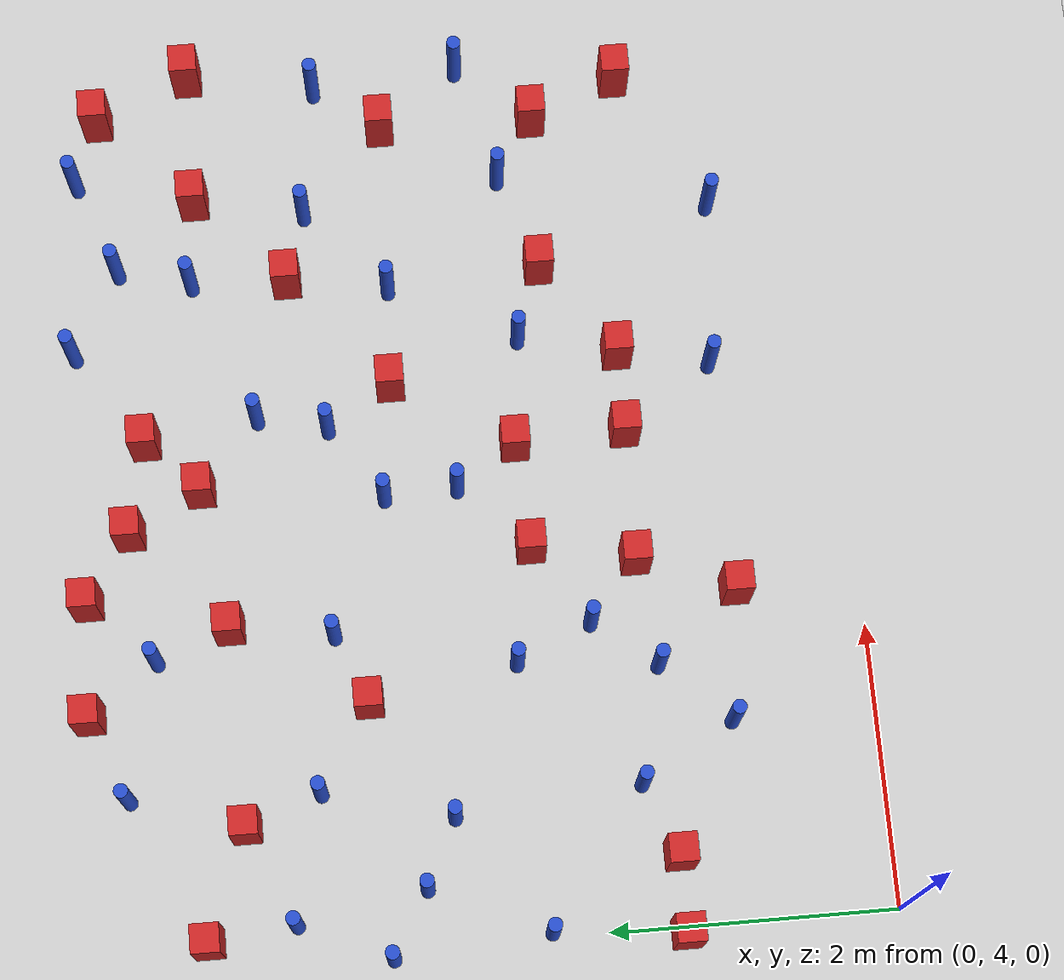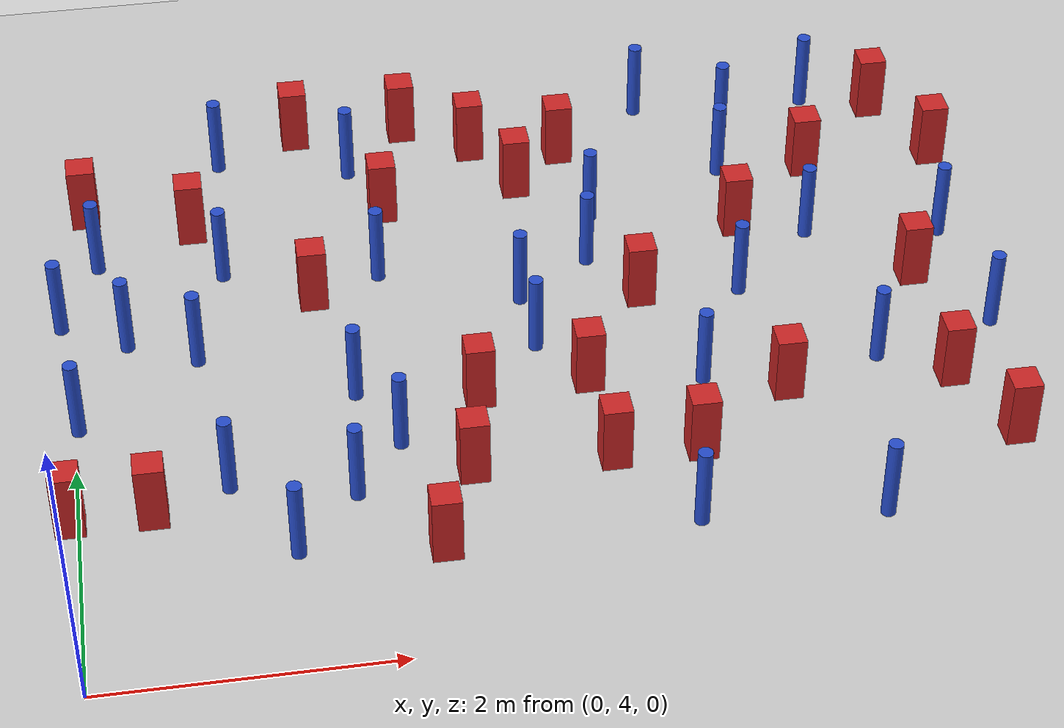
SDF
<sdf version="1.6">
 <world name="default">
  <model name="ground_plane">
   <static>1</static>
   <link name="link">
    <collision name="collision">
     <geometry><plane><normal>0 0 1</normal><size>100 100</size></plane></geometry>
     <surface><friction><ode><mu>100</mu><mu2>50</mu2></ode></friction></surface>
    </collision>
    <visual name="visual">
     <cast_shadows>0</cast_shadows>
     <geometry><plane><normal>0 0 1</normal><size>100 100</size></plane></geometry>
     <material>
      <ambient>1.0 1.0 1.0 1.0</ambient>
      <diffuse>0.8 0.8 0.8 1.0</diffuse>
      <specular>0.01 0.01 0.01 1.000000</specular>
     </material>
    </visual>
   </link>
  </model>
  <model name="pole_obstacle2">
   <static>true</static>
   <pose>3.82269848342 8.17413001489 7.38925637345e-09 -8.47170692793e-08 1.24976764408e-08 -1.74513093041e-07</pose>
   <link name="link">
    <pose>0 0 0.3 0 -0 0</pose>
    <inertial>
     <mass>1</mass>
     <inertia><ixx>0.145833</ixx><ixy>0</ixy><ixz>0</ixz><iyy>0.145833</iyy><iyz>0</iyz><izz>0.125</izz></inertia>
    </inertial>
    <collision name="collision">
     <geometry><cylinder><radius>0.05</radius><length>.6</length></cylinder></geometry>
    </collision>
    <visual name="visual">
     <geometry><cylinder><radius>0.05</radius><length>.6</length></cylinder></geometry>
     <material>
      <script><name>Gazebo/Blue</name><uri>file://media/materials/scripts/gazebo.material</uri></script>
     </material>
    </visual>
   </link>
  </model>
  <model name="square_post_obstacle5">
   <static>true</static>
   <pose>2.31487394498 8.45547136916 1.91545236811e-07 -7.35059704564e-06 1.12565212e-07 2.39332434364e-05</pose>
   <link name="link">
    <pose>0 0 0.25 0 -0 0</pose>
    <inertial>
     <mass>100</mass>
     <inertia>
      <ixx>0.166667</ixx>
      <ixy>0</ixy>
      <ixz>0</ixz>
      <iyy>0.166667</iyy>
      <iyz>0</iyz>
      <izz>0.166667</izz>
     </inertia>
    </inertial>
    <collision name="collision"><geometry><box><size>.2 .2 .5</size></box></geometry></collision>
    <visual name="visual">
     <geometry><box><size>.2 .2 .5</size></box></geometry>
     <material>
      <script><name>Gazebo/Red</name><uri>file://media/materials/scripts/gazebo.material</uri></script>
     </material>
    </visual>
   </link>
  </model>
  <model name="pole_obstacle4">
   <static>true</static>
   <pose>1.90457020753 6.46916176601 7.38925637345e-09 -8.47170692799e-08 1.24976765033e-08 -1.74513093018e-07</pose>
   <link name="link">
    <pose>0 0 0.3 0 -0 0</pose>
    <inertial>
     <mass>1</mass>
     <inertia><ixx>0.145833</ixx><ixy>0</ixy><ixz>0</ixz><iyy>0.145833</iyy><iyz>0</iyz><izz>0.125</izz></inertia>
    </inertial>
    <collision name="collision">
     <geometry><cylinder><radius>0.05</radius><length>.6</length></cylinder></geometry>
    </collision>
    <visual name="visual">
     <geometry><cylinder><radius>0.05</radius><length>.6</length></cylinder></geometry>
     <material>
      <script><name>Gazebo/Blue</name><uri>file://media/materials/scripts/gazebo.material</uri></script>
     </material>
    </visual>
   </link>
  </model>
  <model name="square_post_obstacle24">
   <static>true</static>
   <pose>0.484739802041 5.47457284809 1.91545236811e-07 -7.35059704564e-06 1.12565212e-07 2.39332434364e-05</pose>
   <link name="link">
    <pose>0 0 0.25 0 -0 0</pose>
    <inertial>
     <mass>100</mass>
     <inertia>
      <ixx>0.166667</ixx>
      <ixy>0</ixy>
      <ixz>0</ixz>
      <iyy>0.166667</iyy>
      <iyz>0</iyz>
      <izz>0.166667</izz>
     </inertia>
    </inertial>
    <collision name="collision"><geometry><box><size>.2 .2 .5</size></box></geometry></collision>
    <visual name="visual">
     <geometry><box><size>.2 .2 .5</size></box></geometry>
     <material>
      <script><name>Gazebo/Red</name><uri>file://media/materials/scripts/gazebo.material</uri></script>
     </material>
    </visual>
   </link>
  </model>
  <model name="pole_obstacle18">
   <static>true</static>
   <pose>2.20001541936 7.72817106618 7.38925637345e-09 -8.47170692798e-08 1.24976765033e-08 -1.74513093019e-07</pose>
   <link name="link">
    <pose>0 0 0.3 0 -0 0</pose>
    <inertial>
     <mass>1</mass>
     <inertia><ixx>0.145833</ixx><ixy>0</ixy><ixz>0</ixz><iyy>0.145833</iyy><iyz>0</iyz><izz>0.125</izz></inertia>
    </inertial>
    <collision name="collision">
     <geometry><cylinder><radius>0.05</radius><length>.6</length></cylinder></geometry>
    </collision>
    <visual name="visual">
     <geometry><cylinder><radius>0.05</radius><length>.6</length></cylinder></geometry>
     <material>
      <script><name>Gazebo/Blue</name><uri>file://media/materials/scripts/gazebo.material</uri></script>
     </material>
    </visual>
   </link>
  </model>
  <model name="pole_obstacle23">
   <static>true</static>
   <pose>3.17089003585 7.30738525614 7.38925637345e-09 -8.47170692798e-08 1.24976765033e-08 -1.74513093019e-07</pose>
   <link name="link">
    <pose>0 0 0.3 0 -0 0</pose>
    <inertial>
     <mass>1</mass>
     <inertia><ixx>0.145833</ixx><ixy>0</ixy><ixz>0</ixz><iyy>0.145833</iyy><iyz>0</iyz><izz>0.125</izz></inertia>
    </inertial>
    <collision name="collision">
     <geometry><cylinder><radius>0.05</radius><length>.6</length></cylinder></geometry>
    </collision>
    <visual name="visual">
     <geometry><cylinder><radius>0.05</radius><length>.6</length></cylinder></geometry>
     <material>
      <script><name>Gazebo/Blue</name><uri>file://media/materials/scripts/gazebo.material</uri></script>
     </material>
    </visual>
   </link>
  </model>
  <model name="pole_obstacle27">
   <static>true</static>
   <pose>5.71115070866 9.38778204367 7.38925637345e-09 -8.471706928e-08 1.24976765081e-08 -1.74513093015e-07</pose>
   <link name="link">
    <pose>0 0 0.3 0 -0 0</pose>
    <inertial>
     <mass>1</mass>
     <inertia><ixx>0.145833</ixx><ixy>0</ixy><ixz>0</ixz><iyy>0.145833</iyy><iyz>0</iyz><izz>0.125</izz></inertia>
    </inertial>
    <collision name="collision">
     <geometry><cylinder><radius>0.05</radius><length>.6</length></cylinder></geometry>
    </collision>
    <visual name="visual">
     <geometry><cylinder><radius>0.05</radius><length>.6</length></cylinder></geometry>
     <material>
      <script><name>Gazebo/Blue</name><uri>file://media/materials/scripts/gazebo.material</uri></script>
     </material>
    </visual>
   </link>
  </model>
  <model name="square_post_obstacle32">
   <static>true</static>
   <pose>6.2467090291 5.3941952917 1.91545236811e-07 -7.35059704564e-06 1.12565212e-07 2.39332434364e-05</pose>
   <link name="link">
    <pose>0 0 0.25 0 -0 0</pose>
    <inertial>
     <mass>100</mass>
     <inertia>
      <ixx>0.166667</ixx>
      <ixy>0</ixy>
      <ixz>0</ixz>
      <iyy>0.166667</iyy>
      <iyz>0</iyz>
      <izz>0.166667</izz>
     </inertia>
    </inertial>
    <collision name="collision"><geometry><box><size>.2 .2 .5</size></box></geometry></collision>
    <visual name="visual">
     <geometry><box><size>.2 .2 .5</size></box></geometry>
     <material>
      <script><name>Gazebo/Red</name><uri>file://media/materials/scripts/gazebo.material</uri></script>
     </material>
    </visual>
   </link>
  </model>
  <model name="pole_obstacle30">
   <static>true</static>
   <pose>1.81392781154 5.48696834419 7.38925637345e-09 -8.47170692799e-08 1.24976765033e-08 -1.74513093018e-07</pose>
   <link name="link">
    <pose>0 0 0.3 0 -0 0</pose>
    <inertial>
     <mass>1</mass>
     <inertia><ixx>0.145833</ixx><ixy>0</ixy><ixz>0</ixz><iyy>0.145833</iyy><iyz>0</iyz><izz>0.125</izz></inertia>
    </inertial>
    <collision name="collision">
     <geometry><cylinder><radius>0.05</radius><length>.6</length></cylinder></geometry>
    </collision>
    <visual name="visual">
     <geometry><cylinder><radius>0.05</radius><length>.6</length></cylinder></geometry>
     <material>
      <script><name>Gazebo/Blue</name><uri>file://media/materials/scripts/gazebo.material</uri></script>
     </material>
    </visual>
   </link>
  </model>
  <model name="pole_obstacle32">
   <static>true</static>
   <pose>2.11089054169 8.97932788935 7.38925637345e-09 -8.47170692793e-08 1.24976764408e-08 -1.74513093041e-07</pose>
   <link name="link">
    <pose>0 0 0.3 0 -0 0</pose>
    <inertial>
     <mass>1</mass>
     <inertia><ixx>0.145833</ixx><ixy>0</ixy><ixz>0</ixz><iyy>0.145833</iyy><iyz>0</iyz><izz>0.125</izz></inertia>
    </inertial>
    <collision name="collision">
     <geometry><cylinder><radius>0.05</radius><length>.6</length></cylinder></geometry>
    </collision>
    <visual name="visual">
     <geometry><cylinder><radius>0.05</radius><length>.6</length></cylinder></geometry>
     <material>
      <script><name>Gazebo/Blue</name><uri>file://media/materials/scripts/gazebo.material</uri></script>
     </material>
    </visual>
   </link>
  </model>
  <model name="square_post_obstacle44">
   <static>true</static>
   <pose>5.51763300118 8.53637945711 1.91545236811e-07 -7.35059704564e-06 1.12565212e-07 2.39332434364e-05</pose>
   <link name="link">
    <pose>0 0 0.25 0 -0 0</pose>
    <inertial>
     <mass>100</mass>
     <inertia>
      <ixx>0.166667</ixx>
      <ixy>0</ixy>
      <ixz>0</ixz>
      <iyy>0.166667</iyy>
      <iyz>0</iyz>
      <izz>0.166667</izz>
     </inertia>
    </inertial>
    <collision name="collision"><geometry><box><size>.2 .2 .5</size></box></geometry></collision>
    <visual name="visual">
     <geometry><box><size>.2 .2 .5</size></box></geometry>
     <material>
      <script><name>Gazebo/Red</name><uri>file://media/materials/scripts/gazebo.material</uri></script>
     </material>
    </visual>
   </link>
  </model>
  <model name="pole_obstacle48">
   <static>true</static>
   <pose>0.211260788063 8.11723317209 7.38925637345e-09 -8.47170692797e-08 1.24976764785e-08 -1.74513093032e-07</pose>
   <link name="link">
    <pose>0 0 0.3 0 -0 0</pose>
    <inertial>
     <mass>1</mass>
     <inertia><ixx>0.145833</ixx><ixy>0</ixy><ixz>0</ixz><iyy>0.145833</iyy><iyz>0</iyz><izz>0.125</izz></inertia>
    </inertial>
    <collision name="collision">
     <geometry><cylinder><radius>0.05</radius><length>.6</length></cylinder></geometry>
    </collision>
    <visual name="visual">
     <geometry><cylinder><radius>0.05</radius><length>.6</length></cylinder></geometry>
     <material>
      <script><name>Gazebo/Blue</name><uri>file://media/materials/scripts/gazebo.material</uri></script>
     </material>
    </visual>
   </link>
  </model>
  <model name="pole_obstacle50">
   <static>true</static>
   <pose>5.52344491072 6.31080906475 7.38925637345e-09 -8.47170692796e-08 1.24976764786e-08 -1.74513093032e-07</pose>
   <link name="link">
    <pose>0 0 0.3 0 -0 0</pose>
    <inertial>
     <mass>1</mass>
     <inertia><ixx>0.145833</ixx><ixy>0</ixy><ixz>0</ixz><iyy>0.145833</iyy><iyz>0</iyz><izz>0.125</izz></inertia>
    </inertial>
    <collision name="collision">
     <geometry><cylinder><radius>0.05</radius><length>.6</length></cylinder></geometry>
    </collision>
    <visual name="visual">
     <geometry><cylinder><radius>0.05</radius><length>.6</length></cylinder></geometry>
     <material>
      <script><name>Gazebo/Blue</name><uri>file://media/materials/scripts/gazebo.material</uri></script>
     </material>
    </visual>
   </link>
  </model>
  <model name="square_post_obstacle49">
   <static>true</static>
   <pose>4.1233413864 5.56686361475 1.91545236811e-07 -7.35059704564e-06 1.12565212e-07 2.39332434364e-05</pose>
   <link name="link">
    <pose>0 0 0.25 0 -0 0</pose>
    <inertial>
     <mass>100</mass>
     <inertia>
      <ixx>0.166667</ixx>
      <ixy>0</ixy>
      <ixz>0</ixz>
      <iyy>0.166667</iyy>
      <iyz>0</iyz>
      <izz>0.166667</izz>
     </inertia>
    </inertial>
    <collision name="collision"><geometry><box><size>.2 .2 .5</size></box></geometry></collision>
    <visual name="visual">
     <geometry><box><size>.2 .2 .5</size></box></geometry>
     <material>
      <script><name>Gazebo/Red</name><uri>file://media/materials/scripts/gazebo.material</uri></script>
     </material>
    </visual>
   </link>
  </model>
  <model name="square_post_obstacle54">
   <static>true</static>
   <pose>1.75151003404 9.46270792647 1.91545236811e-07 -7.35059704564e-06 1.12565212e-07 2.39332434364e-05</pose>
   <link name="link">
    <pose>0 0 0.25 0 -0 0</pose>
    <inertial>
     <mass>100</mass>
     <inertia>
      <ixx>0.166667</ixx>
      <ixy>0</ixy>
      <ixz>0</ixz>
      <iyy>0.166667</iyy>
      <iyz>0</iyz>
      <izz>0.166667</izz>
     </inertia>
    </inertial>
    <collision name="collision"><geometry><box><size>.2 .2 .5</size></box></geometry></collision>
    <visual name="visual">
     <geometry><box><size>.2 .2 .5</size></box></geometry>
     <material>
      <script><name>Gazebo/Red</name><uri>file://media/materials/scripts/gazebo.material</uri></script>
     </material>
    </visual>
   </link>
  </model>
  <model name="square_post_obstacle56">
   <static>true</static>
   <pose>4.01272765521 7.20560220593 1.91545236811e-07 -7.35059704564e-06 1.12565212e-07 2.39332434364e-05</pose>
   <link name="link">
    <pose>0 0 0.25 0 -0 0</pose>
    <inertial>
     <mass>100</mass>
     <inertia>
      <ixx>0.166667</ixx>
      <ixy>0</ixy>
      <ixz>0</ixz>
      <iyy>0.166667</iyy>
      <iyz>0</iyz>
      <izz>0.166667</izz>
     </inertia>
    </inertial>
    <collision name="collision"><geometry><box><size>.2 .2 .5</size></box></geometry></collision>
    <visual name="visual">
     <geometry><box><size>.2 .2 .5</size></box></geometry>
     <material>
      <script><name>Gazebo/Red</name><uri>file://media/materials/scripts/gazebo.material</uri></script>
     </material>
    </visual>
   </link>
  </model>
  <model name="pole_obstacle56">
   <static>true</static>
   <pose>5.20020420543 4.79944856402 7.38925637345e-09 -8.47170692796e-08 1.24976764786e-08 -1.74513093032e-07</pose>
   <link name="link">
    <pose>0 0 0.3 0 -0 0</pose>
    <inertial>
     <mass>1</mass>
     <inertia><ixx>0.145833</ixx><ixy>0</ixy><ixz>0</ixz><iyy>0.145833</iyy><iyz>0</iyz><izz>0.125</izz></inertia>
    </inertial>
    <collision name="collision">
     <geometry><cylinder><radius>0.05</radius><length>.6</length></cylinder></geometry>
    </collision>
    <visual name="visual">
     <geometry><cylinder><radius>0.05</radius><length>.6</length></cylinder></geometry>
     <material>
      <script><name>Gazebo/Blue</name><uri>file://media/materials/scripts/gazebo.material</uri></script>
     </material>
    </visual>
   </link>
  </model>
  <model name="square_post_obstacle62">
   <static>true</static>
   <pose>3.32889558486 8.60588170303 1.91545236811e-07 -7.35059704564e-06 1.12565212e-07 2.39332434364e-05</pose>
   <link name="link">
    <pose>0 0 0.25 0 -0 0</pose>
    <inertial>
     <mass>100</mass>
     <inertia>
      <ixx>0.166667</ixx>
      <ixy>0</ixy>
      <ixz>0</ixz>
      <iyy>0.166667</iyy>
      <iyz>0</iyz>
      <izz>0.166667</izz>
     </inertia>
    </inertial>
    <collision name="collision"><geometry><box><size>.2 .2 .5</size></box></geometry></collision>
    <visual name="visual">
     <geometry><box><size>.2 .2 .5</size></box></geometry>
     <material>
      <script><name>Gazebo/Red</name><uri>file://media/materials/scripts/gazebo.material</uri></script>
     </material>
    </visual>
   </link>
  </model>
  <model name="pole_obstacle61">
   <static>true</static>
   <pose>0.0271349696667 6.38572568711 7.38925637345e-09 -8.471706928e-08 1.24976765089e-08 -1.74513093016e-07</pose>
   <link name="link">
    <pose>0 0 0.3 0 -0 0</pose>
    <inertial>
     <mass>1</mass>
     <inertia><ixx>0.145833</ixx><ixy>0</ixy><ixz>0</ixz><iyy>0.145833</iyy><iyz>0</iyz><izz>0.125</izz></inertia>
    </inertial>
    <collision name="collision">
     <geometry><cylinder><radius>0.05</radius><length>.6</length></cylinder></geometry>
    </collision>
    <visual name="visual">
     <geometry><cylinder><radius>0.05</radius><length>.6</length></cylinder></geometry>
     <material>
      <script><name>Gazebo/Blue</name><uri>file://media/materials/scripts/gazebo.material</uri></script>
     </material>
    </visual>
   </link>
  </model>
  <model name="pole_obstacle65">
   <static>true</static>
   <pose>4.73125536535 7.17091150199 7.38925637345e-09 -8.47170692796e-08 1.24976764786e-08 -1.74513093032e-07</pose>
   <link name="link">
    <pose>0 0 0.3 0 -0 0</pose>
    <inertial>
     <mass>1</mass>
     <inertia><ixx>0.145833</ixx><ixy>0</ixy><ixz>0</ixz><iyy>0.145833</iyy><iyz>0</iyz><izz>0.125</izz></inertia>
    </inertial>
    <collision name="collision">
     <geometry><cylinder><radius>0.05</radius><length>.6</length></cylinder></geometry>
    </collision>
    <visual name="visual">
     <geometry><cylinder><radius>0.05</radius><length>.6</length></cylinder></geometry>
     <material>
      <script><name>Gazebo/Blue</name><uri>file://media/materials/scripts/gazebo.material</uri></script>
     </material>
    </visual>
   </link>
  </model>
  <model name="pole_obstacle66">
   <static>true</static>
   <pose>1.09813503017 7.89486243727 7.38925637345e-09 -8.47170692799e-08 1.24976765033e-08 -1.74513093018e-07</pose>
   <link name="link">
    <pose>0 0 0.3 0 -0 0</pose>
    <inertial>
     <mass>1</mass>
     <inertia><ixx>0.145833</ixx><ixy>0</ixy><ixz>0</ixz><iyy>0.145833</iyy><iyz>0</iyz><izz>0.125</izz></inertia>
    </inertial>
    <collision name="collision">
     <geometry><cylinder><radius>0.05</radius><length>.6</length></cylinder></geometry>
    </collision>
    <visual name="visual">
     <geometry><cylinder><radius>0.05</radius><length>.6</length></cylinder></geometry>
     <material>
      <script><name>Gazebo/Blue</name><uri>file://media/materials/scripts/gazebo.material</uri></script>
     </material>
    </visual>
   </link>
  </model>
  <model name="square_post_obstacle70">
   <static>true</static>
   <pose>0.139885185108 8.72020235259 1.91545236811e-07 -7.35059704564e-06 1.12565212e-07 2.39332434364e-05</pose>
   <link name="link">
    <pose>0 0 0.25 0 -0 0</pose>
    <inertial>
     <mass>100</mass>
     <inertia>
      <ixx>0.166667</ixx>
      <ixy>0</ixy>
      <ixz>0</ixz>
      <iyy>0.166667</iyy>
      <iyz>0</iyz>
      <izz>0.166667</izz>
     </inertia>
    </inertial>
    <collision name="collision"><geometry><box><size>.2 .2 .5</size></box></geometry></collision>
    <visual name="visual">
     <geometry><box><size>.2 .2 .5</size></box></geometry>
     <material>
      <script><name>Gazebo/Red</name><uri>file://media/materials/scripts/gazebo.material</uri></script>
     </material>
    </visual>
   </link>
  </model>
  <model name="pole_obstacle69">
   <static>true</static>
   <pose>0.386440607014 7.21195615881 7.38925637345e-09 -8.471706928e-08 1.24976765079e-08 -1.74513093015e-07</pose>
   <link name="link">
    <pose>0 0 0.3 0 -0 0</pose>
    <inertial>
     <mass>1</mass>
     <inertia><ixx>0.145833</ixx><ixy>0</ixy><ixz>0</ixz><iyy>0.145833</iyy><iyz>0</iyz><izz>0.125</izz></inertia>
    </inertial>
    <collision name="collision">
     <geometry><cylinder><radius>0.05</radius><length>.6</length></cylinder></geometry>
    </collision>
    <visual name="visual">
     <geometry><cylinder><radius>0.05</radius><length>.6</length></cylinder></geometry>
     <material>
      <script><name>Gazebo/Blue</name><uri>file://media/materials/scripts/gazebo.material</uri></script>
     </material>
    </visual>
   </link>
  </model>
  <model name="pole_obstacle70">
   <static>true</static>
   <pose>0.99131800528 5.67971599183 7.38925637345e-09 -8.471706928e-08 1.24976765144e-08 -1.74513093012e-07</pose>
   <link name="link">
    <pose>0 0 0.3 0 -0 0</pose>
    <inertial>
     <mass>1</mass>
     <inertia><ixx>0.145833</ixx><ixy>0</ixy><ixz>0</ixz><iyy>0.145833</iyy><iyz>0</iyz><izz>0.125</izz></inertia>
    </inertial>
    <collision name="collision">
     <geometry><cylinder><radius>0.05</radius><length>.6</length></cylinder></geometry>
    </collision>
    <visual name="visual">
     <geometry><cylinder><radius>0.05</radius><length>.6</length></cylinder></geometry>
     <material>
      <script><name>Gazebo/Blue</name><uri>file://media/materials/scripts/gazebo.material</uri></script>
     </material>
    </visual>
   </link>
  </model>
  <model name="pole_obstacle71">
   <static>true</static>
   <pose>3.19909006052 6.78698996671 7.38925637345e-09 -8.47170692798e-08 1.24976765033e-08 -1.74513093019e-07</pose>
   <link name="link">
    <pose>0 0 0.3 0 -0 0</pose>
    <inertial>
     <mass>1</mass>
     <inertia><ixx>0.145833</ixx><ixy>0</ixy><ixz>0</ixz><iyy>0.145833</iyy><iyz>0</iyz><izz>0.125</izz></inertia>
    </inertial>
    <collision name="collision">
     <geometry><cylinder><radius>0.05</radius><length>.6</length></cylinder></geometry>
    </collision>
    <visual name="visual">
     <geometry><cylinder><radius>0.05</radius><length>.6</length></cylinder></geometry>
     <material>
      <script><name>Gazebo/Blue</name><uri>file://media/materials/scripts/gazebo.material</uri></script>
     </material>
    </visual>
   </link>
  </model>
  <model name="pole_obstacle85">
   <static>true</static>
   <pose>5.0114968984 9.11667754702 7.38925637345e-09 -8.471706928e-08 1.24976765081e-08 -1.74513093015e-07</pose>
   <link name="link">
    <pose>0 0 0.3 0 -0 0</pose>
    <inertial>
     <mass>1</mass>
     <inertia><ixx>0.145833</ixx><ixy>0</ixy><ixz>0</ixz><iyy>0.145833</iyy><iyz>0</iyz><izz>0.125</izz></inertia>
    </inertial>
    <collision name="collision">
     <geometry><cylinder><radius>0.05</radius><length>.6</length></cylinder></geometry>
    </collision>
    <visual name="visual">
     <geometry><cylinder><radius>0.05</radius><length>.6</length></cylinder></geometry>
     <material>
      <script><name>Gazebo/Blue</name><uri>file://media/materials/scripts/gazebo.material</uri></script>
     </material>
    </visual>
   </link>
  </model>
  <model name="pole_obstacle106">
   <static>true</static>
   <pose>5.35539246516 7.74326511599 7.38925637345e-09 -8.47170692796e-08 1.24976764786e-08 -1.74513093032e-07</pose>
   <link name="link">
    <pose>0 0 0.3 0 -0 0</pose>
    <inertial>
     <mass>1</mass>
     <inertia><ixx>0.145833</ixx><ixy>0</ixy><ixz>0</ixz><iyy>0.145833</iyy><iyz>0</iyz><izz>0.125</izz></inertia>
    </inertial>
    <collision name="collision">
     <geometry><cylinder><radius>0.05</radius><length>.6</length></cylinder></geometry>
    </collision>
    <visual name="visual">
     <geometry><cylinder><radius>0.05</radius><length>.6</length></cylinder></geometry>
     <material>
      <script><name>Gazebo/Blue</name><uri>file://media/materials/scripts/gazebo.material</uri></script>
     </material>
    </visual>
   </link>
  </model>
  <model name="square_post_obstacle99">
   <static>true</static>
   <pose>2.59164049001 5.58083134924 1.91545236811e-07 -7.35059704564e-06 1.12565212e-07 2.39332434364e-05</pose>
   <link name="link">
    <pose>0 0 0.25 0 -0 0</pose>
    <inertial>
     <mass>100</mass>
     <inertia>
      <ixx>0.166667</ixx>
      <ixy>0</ixy>
      <ixz>0</ixz>
      <iyy>0.166667</iyy>
      <iyz>0</iyz>
      <izz>0.166667</izz>
     </inertia>
    </inertial>
    <collision name="collision"><geometry><box><size>.2 .2 .5</size></box></geometry></collision>
    <visual name="visual">
     <geometry><box><size>.2 .2 .5</size></box></geometry>
     <material>
      <script><name>Gazebo/Red</name><uri>file://media/materials/scripts/gazebo.material</uri></script>
     </material>
    </visual>
   </link>
  </model>
  <model name="pole_obstacle113">
   <static>true</static>
   <pose>2.15249330149 5.93283113827 7.38925637345e-09 -8.47170692798e-08 1.24976765033e-08 -1.74513093019e-07</pose>
   <link name="link">
    <pose>0 0 0.3 0 -0 0</pose>
    <inertial>
     <mass>1</mass>
     <inertia><ixx>0.145833</ixx><ixy>0</ixy><ixz>0</ixz><iyy>0.145833</iyy><iyz>0</iyz><izz>0.125</izz></inertia>
    </inertial>
    <collision name="collision">
     <geometry><cylinder><radius>0.05</radius><length>.6</length></cylinder></geometry>
    </collision>
    <visual name="visual">
     <geometry><cylinder><radius>0.05</radius><length>.6</length></cylinder></geometry>
     <material>
      <script><name>Gazebo/Blue</name><uri>file://media/materials/scripts/gazebo.material</uri></script>
     </material>
    </visual>
   </link>
  </model>
  <model name="square_post_obstacle101">
   <static>true</static>
   <pose>6.19907690571 9.21080341429 1.91545236811e-07 -7.35059704564e-06 1.12565212e-07 2.39332434364e-05</pose>
   <link name="link">
    <pose>0 0 0.25 0 -0 0</pose>
    <inertial>
     <mass>100</mass>
     <inertia>
      <ixx>0.166667</ixx>
      <ixy>0</ixy>
      <ixz>0</ixz>
      <iyy>0.166667</iyy>
      <iyz>0</iyz>
      <izz>0.166667</izz>
     </inertia>
    </inertial>
    <collision name="collision"><geometry><box><size>.2 .2 .5</size></box></geometry></collision>
    <visual name="visual">
     <geometry><box><size>.2 .2 .5</size></box></geometry>
     <material>
      <script><name>Gazebo/Red</name><uri>file://media/materials/scripts/gazebo.material</uri></script>
     </material>
    </visual>
   </link>
  </model>
  <model name="pole_obstacle116">
   <static>true</static>
   <pose>6.41107769135 6.555645335 7.38925637345e-09 -8.47170692796e-08 1.24976764786e-08 -1.74513093032e-07</pose>
   <link name="link">
    <pose>0 0 0.3 0 -0 0</pose>
    <inertial>
     <mass>1</mass>
     <inertia><ixx>0.145833</ixx><ixy>0</ixy><ixz>0</ixz><iyy>0.145833</iyy><iyz>0</iyz><izz>0.125</izz></inertia>
    </inertial>
    <collision name="collision">
     <geometry><cylinder><radius>0.05</radius><length>.6</length></cylinder></geometry>
    </collision>
    <visual name="visual">
     <geometry><cylinder><radius>0.05</radius><length>.6</length></cylinder></geometry>
     <material>
      <script><name>Gazebo/Blue</name><uri>file://media/materials/scripts/gazebo.material</uri></script>
     </material>
    </visual>
   </link>
  </model>
  <model name="square_post_obstacle105">
   <static>true</static>
   <pose>1.71447315022 7.51978550944 1.91545236811e-07 -7.35059704564e-06 1.12565212e-07 2.39332434364e-05</pose>
   <link name="link">
    <pose>0 0 0.25 0 -0 0</pose>
    <inertial>
     <mass>100</mass>
     <inertia>
      <ixx>0.166667</ixx>
      <ixy>0</ixy>
      <ixz>0</ixz>
      <iyy>0.166667</iyy>
      <iyz>0</iyz>
      <izz>0.166667</izz>
     </inertia>
    </inertial>
    <collision name="collision"><geometry><box><size>.2 .2 .5</size></box></geometry></collision>
    <visual name="visual">
     <geometry><box><size>.2 .2 .5</size></box></geometry>
     <material>
      <script><name>Gazebo/Red</name><uri>file://media/materials/scripts/gazebo.material</uri></script>
     </material>
    </visual>
   </link>
  </model>
  <model name="pole_obstacle129">
   <static>true</static>
   <pose>1.15183834618 9.21720935117 7.38925637345e-09 -8.47170692798e-08 1.24976764881e-08 -1.74513093027e-07</pose>
   <link name="link">
    <pose>0 0 0.3 0 -0 0</pose>
    <inertial>
     <mass>1</mass>
     <inertia><ixx>0.145833</ixx><ixy>0</ixy><ixz>0</ixz><iyy>0.145833</iyy><iyz>0</iyz><izz>0.125</izz></inertia>
    </inertial>
    <collision name="collision">
     <geometry><cylinder><radius>0.05</radius><length>.6</length></cylinder></geometry>
    </collision>
    <visual name="visual">
     <geometry><cylinder><radius>0.05</radius><length>.6</length></cylinder></geometry>
     <material>
      <script><name>Gazebo/Blue</name><uri>file://media/materials/scripts/gazebo.material</uri></script>
     </material>
    </visual>
   </link>
  </model>
  <model name="pole_obstacle136">
   <static>true</static>
   <pose>4.39711334864 9.45740977546 7.38925637345e-09 -8.471706928e-08 1.24976765081e-08 -1.74513093015e-07</pose>
   <link name="link">
    <pose>0 0 0.3 0 -0 0</pose>
    <inertial>
     <mass>1</mass>
     <inertia><ixx>0.145833</ixx><ixy>0</ixy><ixz>0</ixz><iyy>0.145833</iyy><iyz>0</iyz><izz>0.125</izz></inertia>
    </inertial>
    <collision name="collision">
     <geometry><cylinder><radius>0.05</radius><length>.6</length></cylinder></geometry>
    </collision>
    <visual name="visual">
     <geometry><cylinder><radius>0.05</radius><length>.6</length></cylinder></geometry>
     <material>
      <script><name>Gazebo/Blue</name><uri>file://media/materials/scripts/gazebo.material</uri></script>
     </material>
    </visual>
   </link>
  </model>
  <model name="square_post_obstacle119">
   <static>true</static>
   <pose>5.99230356262 7.14264684648 1.91545236811e-07 -7.35059704564e-06 1.12565212e-07 2.39332434364e-05</pose>
   <link name="link">
    <pose>0 0 0.25 0 -0 0</pose>
    <inertial>
     <mass>100</mass>
     <inertia>
      <ixx>0.166667</ixx>
      <ixy>0</ixy>
      <ixz>0</ixz>
      <iyy>0.166667</iyy>
      <iyz>0</iyz>
      <izz>0.166667</izz>
     </inertia>
    </inertial>
    <collision name="collision"><geometry><box><size>.2 .2 .5</size></box></geometry></collision>
    <visual name="visual">
     <geometry><box><size>.2 .2 .5</size></box></geometry>
     <material>
      <script><name>Gazebo/Red</name><uri>file://media/materials/scripts/gazebo.material</uri></script>
     </material>
    </visual>
   </link>
  </model>
  <model name="square_post_obstacle122">
   <static>true</static>
   <pose>3.71079149023 8.97856301247 1.91545236811e-07 -7.35059704564e-06 1.12565212e-07 2.39332434364e-05</pose>
   <link name="link">
    <pose>0 0 0.25 0 -0 0</pose>
    <inertial>
     <mass>100</mass>
     <inertia>
      <ixx>0.166667</ixx>
      <ixy>0</ixy>
      <ixz>0</ixz>
      <iyy>0.166667</iyy>
      <iyz>0</iyz>
      <izz>0.166667</izz>
     </inertia>
    </inertial>
    <collision name="collision"><geometry><box><size>.2 .2 .5</size></box></geometry></collision>
    <visual name="visual">
     <geometry><box><size>.2 .2 .5</size></box></geometry>
     <material>
      <script><name>Gazebo/Red</name><uri>file://media/materials/scripts/gazebo.material</uri></script>
     </material>
    </visual>
   </link>
  </model>
  <model name="square_post_obstacle131">
   <static>true</static>
   <pose>2.31976805927 4.89837748578 1.91545236811e-07 -7.35059704564e-06 1.12565212e-07 2.39332434364e-05</pose>
   <link name="link">
    <pose>0 0 0.25 0 -0 0</pose>
    <inertial>
     <mass>100</mass>
     <inertia>
      <ixx>0.166667</ixx>
      <ixy>0</ixy>
      <ixz>0</ixz>
      <iyy>0.166667</iyy>
      <iyz>0</iyz>
      <izz>0.166667</izz>
     </inertia>
    </inertial>
    <collision name="collision"><geometry><box><size>.2 .2 .5</size></box></geometry></collision>
    <visual name="visual">
     <geometry><box><size>.2 .2 .5</size></box></geometry>
     <material>
      <script><name>Gazebo/Red</name><uri>file://media/materials/scripts/gazebo.material</uri></script>
     </material>
    </visual>
   </link>
  </model>
  <model name="square_post_obstacle140">
   <static>true</static>
   <pose>4.81822734176 6.07083751051 1.91545236811e-07 -7.35059704564e-06 1.12565212e-07 2.39332434364e-05</pose>
   <link name="link">
    <pose>0 0 0.25 0 -0 0</pose>
    <inertial>
     <mass>100</mass>
     <inertia>
      <ixx>0.166667</ixx>
      <ixy>0</ixy>
      <ixz>0</ixz>
      <iyy>0.166667</iyy>
      <iyz>0</iyz>
      <izz>0.166667</izz>
     </inertia>
    </inertial>
    <collision name="collision"><geometry><box><size>.2 .2 .5</size></box></geometry></collision>
    <visual name="visual">
     <geometry><box><size>.2 .2 .5</size></box></geometry>
     <material>
      <script><name>Gazebo/Red</name><uri>file://media/materials/scripts/gazebo.material</uri></script>
     </material>
    </visual>
   </link>
  </model>
  <model name="square_post_obstacle144">
   <static>true</static>
   <pose>3.05084562438 9.1194103973 1.91545236811e-07 -7.35059704564e-06 1.12565212e-07 2.39332434364e-05</pose>
   <link name="link">
    <pose>0 0 0.25 0 -0 0</pose>
    <inertial>
     <mass>100</mass>
     <inertia>
      <ixx>0.166667</ixx>
      <ixy>0</ixy>
      <ixz>0</ixz>
      <iyy>0.166667</iyy>
      <iyz>0</iyz>
      <izz>0.166667</izz>
     </inertia>
    </inertial>
    <collision name="collision"><geometry><box><size>.2 .2 .5</size></box></geometry></collision>
    <visual name="visual">
     <geometry><box><size>.2 .2 .5</size></box></geometry>
     <material>
      <script><name>Gazebo/Red</name><uri>file://media/materials/scripts/gazebo.material</uri></script>
     </material>
    </visual>
   </link>
  </model>
  <model name="square_post_obstacle150">
   <static>true</static>
   <pose>0.905941768641 8.42115646633 1.91545236811e-07 -7.35059704564e-06 1.12565212e-07 2.39332434364e-05</pose>
   <link name="link">
    <pose>0 0 0.25 0 -0 0</pose>
    <inertial>
     <mass>100</mass>
     <inertia>
      <ixx>0.166667</ixx>
      <ixy>0</ixy>
      <ixz>0</ixz>
      <iyy>0.166667</iyy>
      <iyz>0</iyz>
      <izz>0.166667</izz>
     </inertia>
    </inertial>
    <collision name="collision"><geometry><box><size>.2 .2 .5</size></box></geometry></collision>
    <visual name="visual">
     <geometry><box><size>.2 .2 .5</size></box></geometry>
     <material>
      <script><name>Gazebo/Red</name><uri>file://media/materials/scripts/gazebo.material</uri></script>
     </material>
    </visual>
   </link>
  </model>
  <model name="square_post_obstacle151">
   <static>true</static>
   <pose>2.56661859419 9.44078602188 1.91545236811e-07 -7.35059704564e-06 1.12565212e-07 2.39332434364e-05</pose>
   <link name="link">
    <pose>0 0 0.25 0 -0 0</pose>
    <inertial>
     <mass>100</mass>
     <inertia>
      <ixx>0.166667</ixx>
      <ixy>0</ixy>
      <ixz>0</ixz>
      <iyy>0.166667</iyy>
      <iyz>0</iyz>
      <izz>0.166667</izz>
     </inertia>
    </inertial>
    <collision name="collision"><geometry><box><size>.2 .2 .5</size></box></geometry></collision>
    <visual name="visual">
     <geometry><box><size>.2 .2 .5</size></box></geometry>
     <material>
      <script><name>Gazebo/Red</name><uri>file://media/materials/scripts/gazebo.material</uri></script>
     </material>
    </visual>
   </link>
  </model>
  <model name="pole_obstacle159">
   <static>true</static>
   <pose>3.9873207229 4.90846509014 7.38925637345e-09 -8.47170692798e-08 1.24976764915e-08 -1.74513093026e-07</pose>
   <link name="link">
    <pose>0 0 0.3 0 -0 0</pose>
    <inertial>
     <mass>1</mass>
     <inertia><ixx>0.145833</ixx><ixy>0</ixy><ixz>0</ixz><iyy>0.145833</iyy><iyz>0</iyz><izz>0.125</izz></inertia>
    </inertial>
    <collision name="collision">
     <geometry><cylinder><radius>0.05</radius><length>.6</length></cylinder></geometry>
    </collision>
    <visual name="visual">
     <geometry><cylinder><radius>0.05</radius><length>.6</length></cylinder></geometry>
     <material>
      <script><name>Gazebo/Blue</name><uri>file://media/materials/scripts/gazebo.material</uri></script>
     </material>
    </visual>
   </link>
  </model>
  <model name="pole_obstacle162">
   <static>true</static>
   <pose>1.38508842147 5.00967374138 7.38925637345e-09 -8.47170692799e-08 1.24976765033e-08 -1.74513093018e-07</pose>
   <link name="link">
    <pose>0 0 0.3 0 -0 0</pose>
    <inertial>
     <mass>1</mass>
     <inertia><ixx>0.145833</ixx><ixy>0</ixy><ixz>0</ixz><iyy>0.145833</iyy><iyz>0</iyz><izz>0.125</izz></inertia>
    </inertial>
    <collision name="collision">
     <geometry><cylinder><radius>0.05</radius><length>.6</length></cylinder></geometry>
    </collision>
    <visual name="visual">
     <geometry><cylinder><radius>0.05</radius><length>.6</length></cylinder></geometry>
     <material>
      <script><name>Gazebo/Blue</name><uri>file://media/materials/scripts/gazebo.material</uri></script>
     </material>
    </visual>
   </link>
  </model>
  <model name="pole_obstacle165">
   <static>true</static>
   <pose>4.87541431547 8.58875783408 7.38925637345e-09 -8.471706928e-08 1.24976765081e-08 -1.74513093015e-07</pose>
   <link name="link">
    <pose>0 0 0.3 0 -0 0</pose>
    <inertial>
     <mass>1</mass>
     <inertia><ixx>0.145833</ixx><ixy>0</ixy><ixz>0</ixz><iyy>0.145833</iyy><iyz>0</iyz><izz>0.125</izz></inertia>
    </inertial>
    <collision name="collision">
     <geometry><cylinder><radius>0.05</radius><length>.6</length></cylinder></geometry>
    </collision>
    <visual name="visual">
     <geometry><cylinder><radius>0.05</radius><length>.6</length></cylinder></geometry>
     <material>
      <script><name>Gazebo/Blue</name><uri>file://media/materials/scripts/gazebo.material</uri></script>
     </material>
    </visual>
   </link>
  </model>
  <model name="pole_obstacle179">
   <static>true</static>
   <pose>4.28082169357 6.26483387879 7.38925637345e-09 -8.47170692796e-08 1.24976764786e-08 -1.74513093032e-07</pose>
   <link name="link">
    <pose>0 0 0.3 0 -0 0</pose>
    <inertial>
     <mass>1</mass>
     <inertia><ixx>0.145833</ixx><ixy>0</ixy><ixz>0</ixz><iyy>0.145833</iyy><iyz>0</iyz><izz>0.125</izz></inertia>
    </inertial>
    <collision name="collision">
     <geometry><cylinder><radius>0.05</radius><length>.6</length></cylinder></geometry>
    </collision>
    <visual name="visual">
     <geometry><cylinder><radius>0.05</radius><length>.6</length></cylinder></geometry>
     <material>
      <script><name>Gazebo/Blue</name><uri>file://media/materials/scripts/gazebo.material</uri></script>
     </material>
    </visual>
   </link>
  </model>
  <model name="pole_obstacle182">
   <static>true</static>
   <pose>6.32443941612 7.61267628299 7.38925637345e-09 -8.47170692796e-08 1.24976764786e-08 -1.74513093032e-07</pose>
   <link name="link">
    <pose>0 0 0.3 0 -0 0</pose>
    <inertial>
     <mass>1</mass>
     <inertia><ixx>0.145833</ixx><ixy>0</ixy><ixz>0</ixz><iyy>0.145833</iyy><iyz>0</iyz><izz>0.125</izz></inertia>
    </inertial>
    <collision name="collision">
     <geometry><cylinder><radius>0.05</radius><length>.6</length></cylinder></geometry>
    </collision>
    <visual name="visual">
     <geometry><cylinder><radius>0.05</radius><length>.6</length></cylinder></geometry>
     <material>
      <script><name>Gazebo/Blue</name><uri>file://media/materials/scripts/gazebo.material</uri></script>
     </material>
    </visual>
   </link>
  </model>
  <model name="square_post_obstacle174">
   <static>true</static>
   <pose>6.49981917372 8.53611154443 1.91545236811e-07 -7.35059704564e-06 1.12565212e-07 2.39332434364e-05</pose>
   <link name="link">
    <pose>0 0 0.25 0 -0 0</pose>
    <inertial>
     <mass>100</mass>
     <inertia>
      <ixx>0.166667</ixx>
      <ixy>0</ixy>
      <ixz>0</ixz>
      <iyy>0.166667</iyy>
      <iyz>0</iyz>
      <izz>0.166667</izz>
     </inertia>
    </inertial>
    <collision name="collision"><geometry><box><size>.2 .2 .5</size></box></geometry></collision>
    <visual name="visual">
     <geometry><box><size>.2 .2 .5</size></box></geometry>
     <material>
      <script><name>Gazebo/Red</name><uri>file://media/materials/scripts/gazebo.material</uri></script>
     </material>
    </visual>
   </link>
  </model>
  <model name="square_post_obstacle189">
   <static>true</static>
   <pose>3.49330474723 6.3546598035 1.91545236811e-07 -7.35059704564e-06 1.12565212e-07 2.39332434364e-05</pose>
   <link name="link">
    <pose>0 0 0.25 0 -0 0</pose>
    <inertial>
     <mass>100</mass>
     <inertia>
      <ixx>0.166667</ixx>
      <ixy>0</ixy>
      <ixz>0</ixz>
      <iyy>0.166667</iyy>
      <iyz>0</iyz>
      <izz>0.166667</izz>
     </inertia>
    </inertial>
    <collision name="collision"><geometry><box><size>.2 .2 .5</size></box></geometry></collision>
    <visual name="visual">
     <geometry><box><size>.2 .2 .5</size></box></geometry>
     <material>
      <script><name>Gazebo/Red</name><uri>file://media/materials/scripts/gazebo.material</uri></script>
     </material>
    </visual>
   </link>
  </model>
  <model name="pole_obstacle200">
   <static>true</static>
   <pose>-0.0665291529298 7.47512794757 7.38925637345e-09 -8.471706928e-08 1.24976765084e-08 -1.74513093017e-07</pose>
   <link name="link">
    <pose>0 0 0.3 0 -0 0</pose>
    <inertial>
     <mass>1</mass>
     <inertia><ixx>0.145833</ixx><ixy>0</ixy><ixz>0</ixz><iyy>0.145833</iyy><iyz>0</iyz><izz>0.125</izz></inertia>
    </inertial>
    <collision name="collision">
     <geometry><cylinder><radius>0.05</radius><length>.6</length></cylinder></geometry>
    </collision>
    <visual name="visual">
     <geometry><cylinder><radius>0.05</radius><length>.6</length></cylinder></geometry>
     <material>
      <script><name>Gazebo/Blue</name><uri>file://media/materials/scripts/gazebo.material</uri></script>
     </material>
    </visual>
   </link>
  </model>
  <model name="square_post_obstacle196">
   <static>true</static>
   <pose>3.53599284615 5.56648050814 1.91545236811e-07 -7.35059704564e-06 1.12565212e-07 2.39332434364e-05</pose>
   <link name="link">
    <pose>0 0 0.25 0 -0 0</pose>
    <inertial>
     <mass>100</mass>
     <inertia>
      <ixx>0.166667</ixx>
      <ixy>0</ixy>
      <ixz>0</ixz>
      <iyy>0.166667</iyy>
      <iyz>0</iyz>
      <izz>0.166667</izz>
     </inertia>
    </inertial>
    <collision name="collision"><geometry><box><size>.2 .2 .5</size></box></geometry></collision>
    <visual name="visual">
     <geometry><box><size>.2 .2 .5</size></box></geometry>
     <material>
      <script><name>Gazebo/Red</name><uri>file://media/materials/scripts/gazebo.material</uri></script>
     </material>
    </visual>
   </link>
  </model>
  <model name="pole_obstacle210">
   <static>true</static>
   <pose>0.862180364512 6.98586635481 7.38925637345e-09 -8.471706928e-08 1.24976765086e-08 -1.74513093015e-07</pose>
   <link name="link">
    <pose>0 0 0.3 0 -0 0</pose>
    <inertial>
     <mass>1</mass>
     <inertia><ixx>0.145833</ixx><ixy>0</ixy><ixz>0</ixz><iyy>0.145833</iyy><iyz>0</iyz><izz>0.125</izz></inertia>
    </inertial>
    <collision name="collision">
     <geometry><cylinder><radius>0.05</radius><length>.6</length></cylinder></geometry>
    </collision>
    <visual name="visual">
     <geometry><cylinder><radius>0.05</radius><length>.6</length></cylinder></geometry>
     <material>
      <script><name>Gazebo/Blue</name><uri>file://media/materials/scripts/gazebo.material</uri></script>
     </material>
    </visual>
   </link>
  </model>
  <model name="square_post_obstacle201">
   <static>true</static>
   <pose>4.8556642344 7.89791169195 1.91545236811e-07 -7.35059704564e-06 1.12565212e-07 2.39332434364e-05</pose>
   <link name="link">
    <pose>0 0 0.25 0 -0 0</pose>
    <inertial>
     <mass>100</mass>
     <inertia>
      <ixx>0.166667</ixx>
      <ixy>0</ixy>
      <ixz>0</ixz>
      <iyy>0.166667</iyy>
      <iyz>0</iyz>
      <izz>0.166667</izz>
     </inertia>
    </inertial>
    <collision name="collision"><geometry><box><size>.2 .2 .5</size></box></geometry></collision>
    <visual name="visual">
     <geometry><box><size>.2 .2 .5</size></box></geometry>
     <material>
      <script><name>Gazebo/Red</name><uri>file://media/materials/scripts/gazebo.material</uri></script>
     </material>
    </visual>
   </link>
  </model>
  <model name="square_post_obstacle204">
   <static>true</static>
   <pose>5.97671677318 6.03040450371 1.91545236811e-07 -7.35059704564e-06 1.12565212e-07 2.39332434364e-05</pose>
   <link name="link">
    <pose>0 0 0.25 0 -0 0</pose>
    <inertial>
     <mass>100</mass>
     <inertia>
      <ixx>0.166667</ixx>
      <ixy>0</ixy>
      <ixz>0</ixz>
      <iyy>0.166667</iyy>
      <iyz>0</iyz>
      <izz>0.166667</izz>
     </inertia>
    </inertial>
    <collision name="collision"><geometry><box><size>.2 .2 .5</size></box></geometry></collision>
    <visual name="visual">
     <geometry><box><size>.2 .2 .5</size></box></geometry>
     <material>
      <script><name>Gazebo/Red</name><uri>file://media/materials/scripts/gazebo.material</uri></script>
     </material>
    </visual>
   </link>
  </model>
  <model name="square_post_obstacle208">
   <static>true</static>
   <pose>-0.0510250904885 5.47742023391 1.91545236811e-07 -7.35059704564e-06 1.12565212e-07 2.39332434364e-05</pose>
   <link name="link">
    <pose>0 0 0.25 0 -0 0</pose>
    <inertial>
     <mass>100</mass>
     <inertia>
      <ixx>0.166667</ixx>
      <ixy>0</ixy>
      <ixz>0</ixz>
      <iyy>0.166667</iyy>
      <iyz>0</iyz>
      <izz>0.166667</izz>
     </inertia>
    </inertial>
    <collision name="collision"><geometry><box><size>.2 .2 .5</size></box></geometry></collision>
    <visual name="visual">
     <geometry><box><size>.2 .2 .5</size></box></geometry>
     <material>
      <script><name>Gazebo/Red</name><uri>file://media/materials/scripts/gazebo.material</uri></script>
     </material>
    </visual>
   </link>
  </model>
  <model name="square_post_obstacle214">
   <static>true</static>
   <pose>2.73296548416 6.30669935276 1.91545236811e-07 -7.35059704564e-06 1.12565212e-07 2.39332434364e-05</pose>
   <link name="link">
    <pose>0 0 0.25 0 -0 0</pose>
    <inertial>
     <mass>100</mass>
     <inertia>
      <ixx>0.166667</ixx>
      <ixy>0</ixy>
      <ixz>0</ixz>
      <iyy>0.166667</iyy>
      <iyz>0</iyz>
      <izz>0.166667</izz>
     </inertia>
    </inertial>
    <collision name="collision"><geometry><box><size>.2 .2 .5</size></box></geometry></collision>
    <visual name="visual">
     <geometry><box><size>.2 .2 .5</size></box></geometry>
     <material>
      <script><name>Gazebo/Red</name><uri>file://media/materials/scripts/gazebo.material</uri></script>
     </material>
    </visual>
   </link>
  </model>
  <model name="pole_obstacle214">
   <static>true</static>
   <pose>3.71186000957 7.67348002078 7.38925637345e-09 -8.47170692794e-08 1.24976764468e-08 -1.7451309304e-07</pose>
   <link name="link">
    <pose>0 0 0.3 0 -0 0</pose>
    <inertial>
     <mass>1</mass>
     <inertia><ixx>0.145833</ixx><ixy>0</ixy><ixz>0</ixz><iyy>0.145833</iyy><iyz>0</iyz><izz>0.125</izz></inertia>
    </inertial>
    <collision name="collision">
     <geometry><cylinder><radius>0.05</radius><length>.6</length></cylinder></geometry>
    </collision>
    <visual name="visual">
     <geometry><cylinder><radius>0.05</radius><length>.6</length></cylinder></geometry>
     <material>
      <script><name>Gazebo/Blue</name><uri>file://media/materials/scripts/gazebo.material</uri></script>
     </material>
    </visual>
   </link>
  </model>
 </world>
</sdf>
